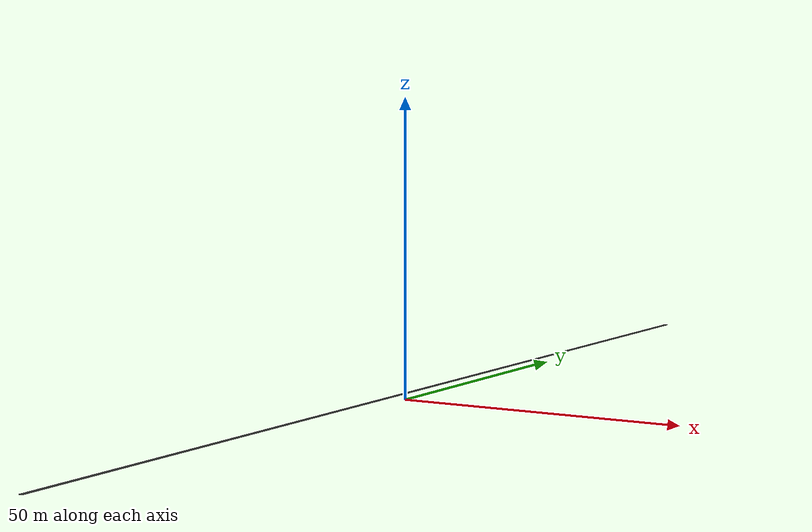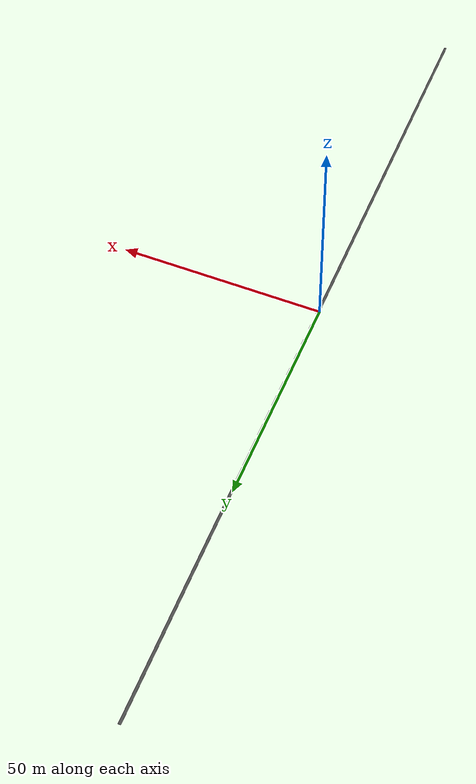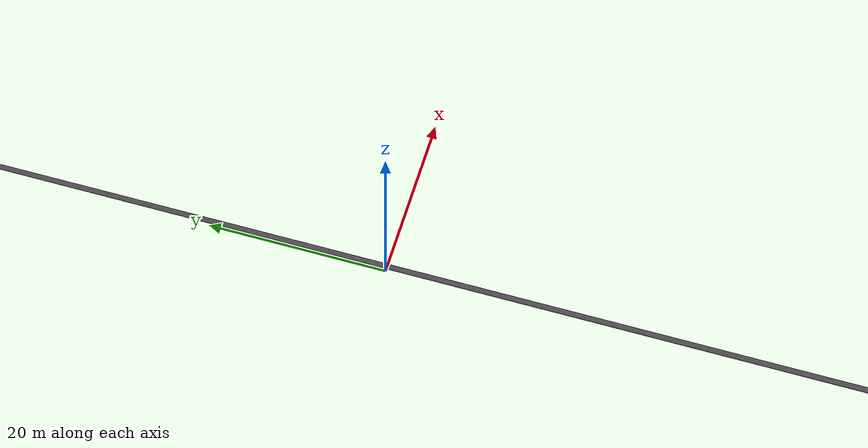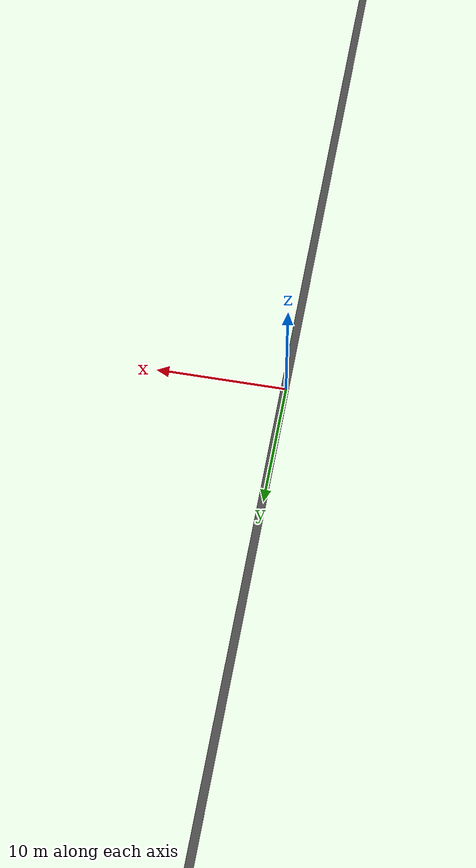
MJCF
<mujoco model="conveyor_belt">

  <worldbody>
    <body name="conveyor" pos="0 0 1.05">
      <joint name="conveyor_linear" type="slide" axis="0 1 0" solreflimit=".08 1" damping="5e-4"/>
      <geom name="belt" type="box" size="0.3 100.0 0.04"  mass="1000" rgba="0.3 0.3 0.3 1" friction="0.8 0.01 0.01"
      solimp="0.95 0.9999 0.001 0.5 2.0" solref="0.004 1.0" priority="1"/>
    </body>
  </worldbody>
    <actuator>
        <velocity name="slide" joint="conveyor_linear" kv="10000" ctrllimited="true" ctrlrange="-1 1"/>
    </actuator>
</mujoco>
